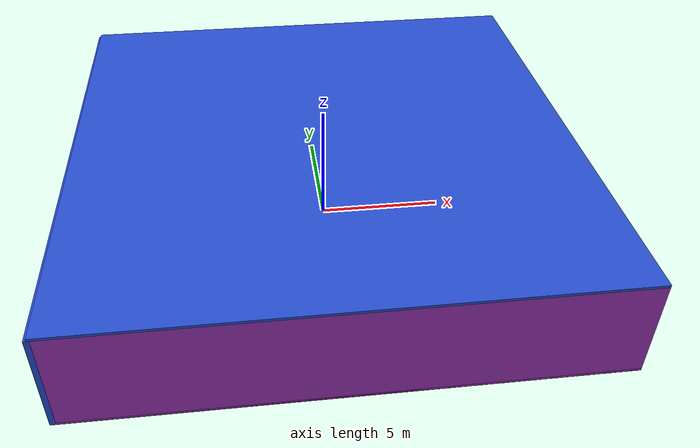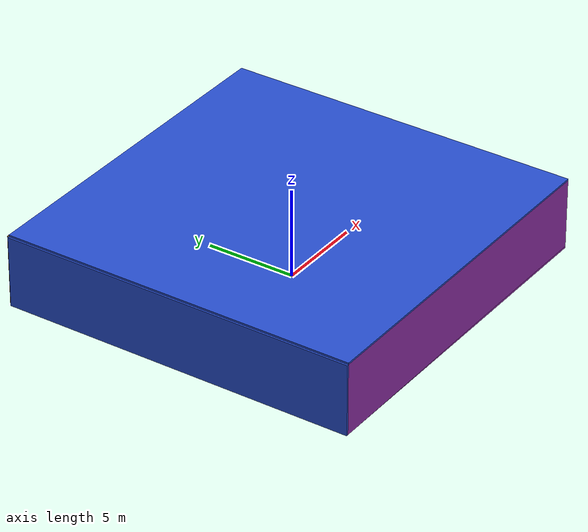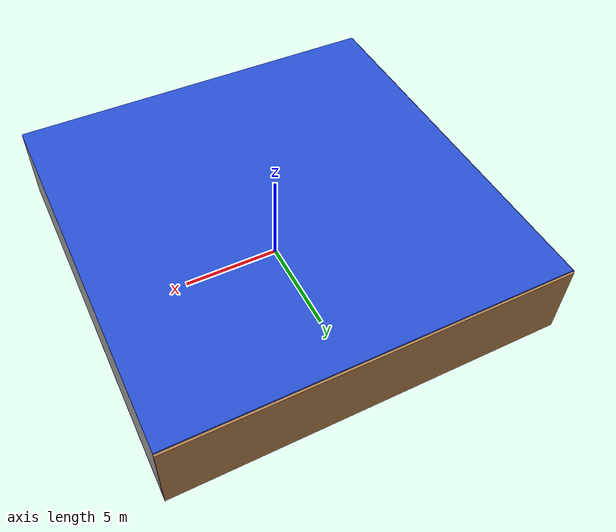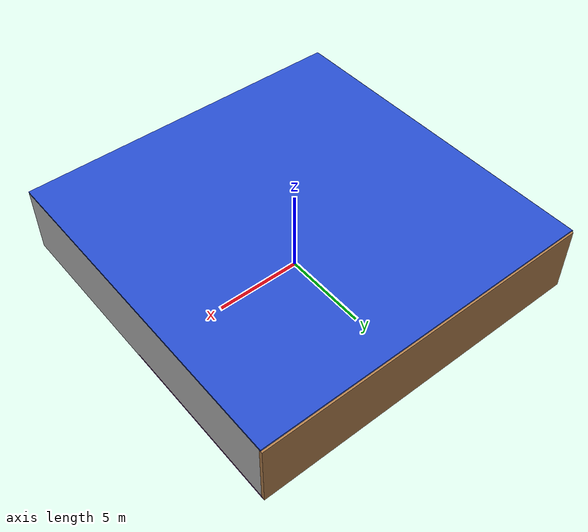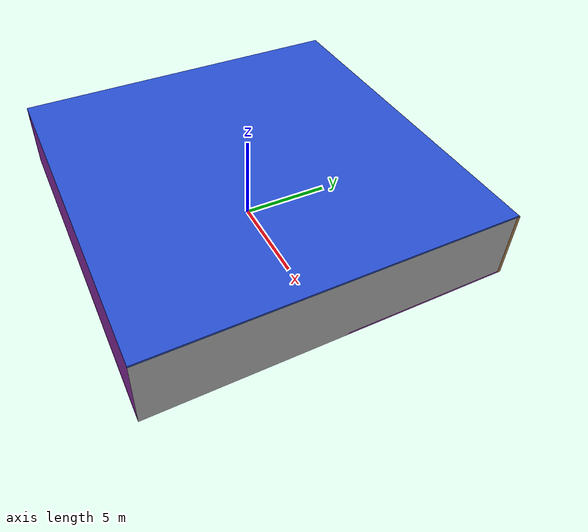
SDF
<sdf version="1.4">
 <world name="default">
  <physics type="ode">
   <max_step_size>0.001</max_step_size>
   <real_time_factor>1</real_time_factor>
   <real_time_update_rate>1000</real_time_update_rate>
   <gravity>0 0 -9.8</gravity>
  </physics>
  <scene><ambient>0.4 0.4 0.4 1</ambient><background>0.7 0.7 0.7 1</background><shadows>1</shadows></scene>
  <model name="Surrounding">
   <static>1</static>
   <link name="Ceiling">
    <collision name="Ceiling_Collision"><geometry><box><size>20 20 0.1</size></box></geometry></collision>
    <visual name="Ceiling_Visual">
     <geometry><box><size>20 20 0.1</size></box></geometry>
     <material>
      <script><uri>file://media/materials/scripts/gazebo.material</uri><name>Gazebo/BlueGlow</name></script>
     </material>
    </visual>
    <pose>0 0 4.05 0 0 0</pose>
   </link>
   <link name="Wall_South">
    <collision name="Wall_South_Collision">
     <geometry><box><size>20 0 4</size></box></geometry>
     <pose>0 0 2 0 -0 0</pose>
    </collision>
    <visual name="Wall_South_Visual">
     <pose>0 0 2 0 -0 0</pose>
     <geometry><box><size>20 0 4</size></box></geometry>
     <material>
      <script><uri>file://media/materials/scripts/gazebo.material</uri><name>Gazebo/Purple</name></script>
     </material>
    </visual>
    <velocity_decay><linear>0</linear><angular>0</angular></velocity_decay>
    <pose>0 -10 0 0 -0 0</pose>
   </link>
   <link name="Wall_East">
    <collision name="Wall_21_Collision">
     <geometry><box><size>20 0 4</size></box></geometry>
     <pose>0 0 2 0 -0 0</pose>
    </collision>
    <visual name="Wall_21_Visual">
     <pose>0 0 2 0 -0 0</pose>
     <geometry><box><size>20 0 4</size></box></geometry>
     <material>
      <script><uri>file://media/materials/scripts/gazebo.material</uri><name>Gazebo/LightOff</name></script>
     </material>
    </visual>
    <velocity_decay><linear>0</linear><angular>0</angular></velocity_decay>
    <pose>10 0 0 0 -0 1.5708</pose>
   </link>
   <link name="Wall_North">
    <collision name="Wall_22_Collision">
     <geometry><box><size>20 0.2 4</size></box></geometry>
     <pose>0 0 2 0 -0 0</pose>
    </collision>
    <visual name="Wall_22_Visual">
     <pose>0 0 2 0 -0 0</pose>
     <geometry><box><size>20 0.2 4</size></box></geometry>
     <material>
      <script><uri>file://media/materials/scripts/gazebo.material</uri><name>Gazebo/Wood</name></script>
     </material>
    </visual>
    <velocity_decay><linear>0</linear><angular>0</angular></velocity_decay>
    <pose>0 10 0 0 -0 0</pose>
   </link>
   <link name="Wall_West">
    <collision name="Wall_23_Collision">
     <geometry><box><size>20 0.2 4</size></box></geometry>
     <pose>0 0 2 0 -0 0</pose>
    </collision>
    <visual name="Wall_23_Visual">
     <pose>0 0 2 0 -0 0</pose>
     <geometry><box><size>20 0.2 4</size></box></geometry>
     <material>
      <script><uri>file://media/materials/scripts/gazebo.material</uri><name>Gazebo/BlueGlow</name></script>
     </material>
    </visual>
    <velocity_decay><linear>0</linear><angular>0</angular></velocity_decay>
    <pose>-10 0 0 0 0 -1.5708</pose>
   </link>
   <link name="Ground_link">
    <collision name="collision">
     <pose>0 0 .05 0 -0 0</pose>
     <geometry><box><size>20 20 0.1</size></box></geometry>
    </collision>
    <visual name="visual">
     <pose>0 0 .05 0 -0 0</pose>
     <geometry><box><size>20 20 0.1</size></box></geometry>
     <material>
      <script><uri>file://media/materials/scripts/gazebo.material</uri><name>Gazebo/PurpleGlow</name></script>
     </material>
    </visual>
   </link>
   <static>1</static>
  </model>
  <spherical_coordinates>
   <surface_model>EARTH_WGS84</surface_model>
   <latitude_deg>0</latitude_deg>
   <longitude_deg>0</longitude_deg>
   <elevation>0</elevation>
   <heading_deg>0</heading_deg>
  </spherical_coordinates>
  <light name="lightball_0" type="diffuse">
   <diffuse>0.8 0.8 0.8 1</diffuse>
   <specular>0.2 0.2 0.2 1</specular>
   <attenuation>
    <range>100</range>
    <constant>0.7</constant>
    <linear>0.01</linear>
    <quadratic>0.001</quadratic>
   </attenuation>
   <direction>-0.5 0.1 -0.9</direction>
   <pose>-5.74580009406 5.5226681416 3.58614984298 0 0 0</pose>
  </light>
  <light name="lightball_1" type="diffuse">
   <diffuse>0.8 0.8 0.8 1</diffuse>
   <specular>0.2 0.2 0.2 1</specular>
   <attenuation>
    <range>100</range>
    <constant>0.7</constant>
    <linear>0.01</linear>
    <quadratic>0.001</quadratic>
   </attenuation>
   <direction>-0.5 0.1 -0.9</direction>
   <pose>7.27207213929 -8.98234792241 1.24427876259 0 0 0</pose>
  </light>
  <light name="lightball_2" type="diffuse">
   <diffuse>0.8 0.8 0.8 1</diffuse>
   <specular>0.2 0.2 0.2 1</specular>
   <attenuation>
    <range>100</range>
    <constant>0.7</constant>
    <linear>0.01</linear>
    <quadratic>0.001</quadratic>
   </attenuation>
   <direction>-0.5 0.1 -0.9</direction>
   <pose>-5.72198255869 -6.20995773194 0.845088861998 0 0 0</pose>
  </light>
  <light name="lightball_3" type="diffuse">
   <diffuse>0.8 0.8 0.8 1</diffuse>
   <specular>0.2 0.2 0.2 1</specular>
   <attenuation>
    <range>100</range>
    <constant>0.7</constant>
    <linear>0.01</linear>
    <quadratic>0.001</quadratic>
   </attenuation>
   <direction>-0.5 0.1 -0.9</direction>
   <pose>-3.8023251074 -0.383950646439 3.49633107125 0 0 0</pose>
  </light>
  <light name="lightball_4" type="diffuse">
   <diffuse>0.8 0.8 0.8 1</diffuse>
   <specular>0.2 0.2 0.2 1</specular>
   <attenuation>
    <range>100</range>
    <constant>0.7</constant>
    <linear>0.01</linear>
    <quadratic>0.001</quadratic>
   </attenuation>
   <direction>-0.5 0.1 -0.9</direction>
   <pose>-8.322197859 -1.60967518882 3.69403737523 0 0 0</pose>
  </light>
  <include><uri>model://cabinet</uri><pose>-4.72985486001 -6.92564626688 0 0 0 1.23294050706</pose></include>
  <include><uri>model://cabinet</uri><pose>0.354745457475 -7.51683650625 0 0 0 2.15214841837</pose></include>
  <include>
   <uri>model://robocup_3Dsim_goal</uri>
   <pose>5.14045229756 -0.534572262742 0 0 0 1.85561305449</pose>
  </include>
  <include><uri>model://cabinet</uri><pose>5.58975228734 0.628197802081 0 0 0 2.85635723237</pose></include>
  <include>
   <uri>model://construction_cone</uri>
   <pose>4.54742380531 8.62140037139 0 0 0 1.52094396449</pose>
  </include>
  <include><uri>model://cabinet</uri><pose>6.66154077371 0.432726917751 0 0 0 0.631960105048</pose></include>
  <include><uri>model://cabinet</uri><pose>7.97862892806 8.41134995514 0 0 0 0.505120595495</pose></include>
 </world>
</sdf>

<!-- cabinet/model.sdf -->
<sdf version="1.5">
  <model name="cabinet">
    <static>true</static>
    <link name="cabinet_bottom_plate">
      <inertial>
        <pose>0 0 -1 0 0 0</pose>
        <inertia>
          <ixx>2.050000</ixx>
          <ixy>0</ixy>
          <ixz>0</ixz>
          <iyy>2.050000</iyy>
          <iyz>0</iyz>
          <izz>2.050000</izz>
        </inertia>
        <mass>25.000000</mass>
      </inertial>
      <collision name="cabinet_bottom_plate_geom">
        <pose>0 0 0.010000 0 0 0</pose>
        <geometry>
          <box>
            <size>0.450000 0.450000 0.020000</size>
          </box>
        </geometry>
      </collision>
      <visual name="cabinet_bottom_plate_geom_visual">
        <pose>0 0 0.010000 0 0 0</pose>
        <geometry>
          <box>
            <size>0.450000 0.450000 0.020000</size>
          </box>
        </geometry>
        <material>
          <script>
            <uri>model://media/materials/scripts/gazebo.material</uri>
            <name>Gazebo/Wood</name>
          </script>
        </material>
      </visual>
      <collision name="cabinet_bottom_plate_geom_cabinet_back_plate">
        <pose>0.235000 0 0.510000 0 0 0</pose>
        <geometry>
          <box>
            <size>0.020000 0.450000 1.020000</size>
          </box>
        </geometry>
      </collision>
      <visual name="cabinet_bottom_plate_geom_cabinet_back_plate_visual">
        <pose>0.235000 0 0.510000 0 0 0</pose>
        <geometry>
          <box>
            <size>0.020000 0.450000 1.020000</size>
          </box>
        </geometry>
        <material>
          <script>
            <uri>model://media/materials/scripts/gazebo.material</uri>
            <name>Gazebo/Wood</name>
          </script>
        </material>
      </visual>
      <collision name="cabinet_bottom_plate_geom_cabinet_left_plate">
        <pose>0 0.235000 0.510000 0 0 0</pose>
        <geometry>
          <box>
            <size>0.450000 0.020000 1.020000</size>
          </box>
        </geometry>
      </collision>
      <visual name="cabinet_bottom_plate_geom_cabinet_left_plate_visual">
        <pose>0 0.235000 0.510000 0 0 0</pose>
        <geometry>
          <box>
            <size>0.450000 0.020000 1.020000</size>
          </box>
        </geometry>
        <material>
          <script>
            <uri>model://media/materials/scripts/gazebo.material</uri>
            <name>Gazebo/Wood</name>
          </script>
        </material>
      </visual>
      <collision name="cabinet_bottom_plate_geom_cabinet_middle_plate">
        <pose>0 0 0.510000 0 0 0</pose>
        <geometry>
          <box>
            <size>0.450000 0.450000 0.020000</size>
          </box>
        </geometry>
      </collision>
      <visual name="cabinet_bottom_plate_geom_cabinet_middle_plate_visual">
        <pose>0 0 0.510000 0 0 0</pose>
        <geometry>
          <box>
            <size>0.450000 0.450000 0.020000</size>
          </box>
        </geometry>
        <material>
          <script>
            <uri>model://media/materials/scripts/gazebo.material</uri>
            <name>Gazebo/Wood</name>
          </script>
        </material>
      </visual>
      <collision name="cabinet_bottom_plate_geom_cabinet_right_plate">
        <pose>0 -0.235000 0.510000 0 0 0</pose>
        <geometry>
          <box>
            <size>0.450000 0.020000 1.020000</size>
          </box>
        </geometry>
      </collision>
      <visual name="cabinet_bottom_plate_geom_cabinet_right_plate_visual">
        <pose>0 -0.235000 0.510000 0 0 0</pose>
        <geometry>
          <box>
            <size>0.450000 0.020000 1.020000</size>
          </box>
        </geometry>
        <material>
          <script>
            <uri>model://media/materials/scripts/gazebo.material</uri>
            <name>Gazebo/Wood</name>
          </script>
        </material>
      </visual>
      <collision name="cabinet_bottom_plate_geom_cabinet_top_plate">
        <pose>0 0 1.010000 0 0 0</pose>
        <geometry>
          <box>
            <size>0.450000 0.450000 0.020000</size>
          </box>
        </geometry>
      </collision>
      <visual name="cabinet_bottom_plate_geom_cabinet_top_plate_visual">
        <pose>0 0 1.010000 0 0 0</pose>
        <geometry>
          <box>
            <size>0.450000 0.450000 0.020000</size>
          </box>
        </geometry>
        <material>
          <script>
            <uri>model://media/materials/scripts/gazebo.material</uri>
            <name>Gazebo/Wood</name>
          </script>
        </material>
      </visual>
    </link>
  </model>
</sdf>

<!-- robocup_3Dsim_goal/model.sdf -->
<sdf version="1.5">
  <model name="robocup_3d_goal">
    <static>true</static>
    <link name="left_post">
      <pose>0 1.05 0.45 0 0 0</pose>
      <collision name="collision">
        <geometry>
          <cylinder>
            <radius>0.05</radius>
            <length>0.9</length>
          </cylinder>
        </geometry>
      </collision>
      <visual name="visual">
        <geometry>
          <cylinder>
            <radius>0.05</radius>
            <length>0.9</length>
          </cylinder>
        </geometry>
        <material>
          <script>
            <uri>file://media/materials/scripts/gazebo.material</uri>
            <name>Gazebo/ZincYellow</name>
          </script>
        </material>
      </visual>
    </link>
    <link name="left_support_horiz_lower">
      <pose>0.30 1.05 0.01 0 0 0</pose>
      <collision name="collision">
        <geometry>
          <box>
            <size>0.50 0.02 0.02</size>
          </box>
        </geometry>
      </collision>
      <visual name="visual">
        <geometry>
          <box>
            <size>0.50 0.02 0.02</size>
          </box>
        </geometry>
        <material>
          <script>
            <uri>file://media/materials/scripts/gazebo.material</uri>
            <name>Gazebo/White</name>
          </script>
        </material>
      </visual>
    </link>
    <link name="left_support_horiz_upper">
      <pose>0.30 1.05 0.79 0 0 0</pose>
      <collision name="collision">
        <geometry>
          <box>
            <size>0.50 0.02 0.02</size>
          </box>
        </geometry>
      </collision>
      <visual name="visual">
        <geometry>
          <box>
            <size>0.50 0.02 0.02</size>
          </box>
        </geometry>
        <material>
          <script>
            <uri>file://media/materials/scripts/gazebo.material</uri>
            <name>Gazebo/White</name>
          </script>
        </material>
      </visual>
    </link>
    <link name="left_support_vertical">
      <pose>0.56 1.05 0.4 0 1.5708 0</pose>
      <collision name="collision">
        <geometry>
          <box>
            <size>0.80 0.02 0.02</size>
          </box>
        </geometry>
      </collision>
      <visual name="visual">
        <geometry>
          <box>
            <size>0.80 0.02 0.02</size>
          </box>
        </geometry>
        <material>
          <script>
            <uri>file://media/materials/scripts/gazebo.material</uri>
            <name>Gazebo/White</name>
          </script>
        </material>
      </visual>
    </link>
    <link name="right_support_horiz_lower">
      <pose>0.30 -1.05 0.01 0 0 0</pose>
      <collision name="collision">
        <geometry>
          <box>
            <size>0.50 0.02 0.02</size>
          </box>
        </geometry>
      </collision>
      <visual name="visual">
        <geometry>
          <box>
            <size>0.50 0.02 0.02</size>
          </box>
        </geometry>
        <material>
          <script>
            <uri>file://media/materials/scripts/gazebo.material</uri>
            <name>Gazebo/White</name>
          </script>
        </material>
      </visual>
    </link>
    <link name="right_support_horiz_upper">
      <pose>0.30 -1.05 0.79 0 0 0</pose>
      <collision name="collision">
        <geometry>
          <box>
            <size>0.50 0.02 0.02</size>
          </box>
        </geometry>
      </collision>
      <visual name="visual">
        <geometry>
          <box>
            <size>0.50 0.02 0.02</size>
          </box>
        </geometry>
        <material>
          <script>
            <uri>file://media/materials/scripts/gazebo.material</uri>
            <name>Gazebo/White</name>
          </script>
        </material>
      </visual>
    </link>
    <link name="right_support_vertical">
      <pose>0.56 -1.05 0.4 0 1.5708 0</pose>
      <collision name="collision">
        <geometry>
          <box>
            <size>0.80 0.02 0.02</size>
          </box>
        </geometry>
      </collision>
      <visual name="visual">
        <geometry>
          <box>
            <size>0.80 0.02 0.02</size>
          </box>
        </geometry>
        <material>
          <script>
            <uri>file://media/materials/scripts/gazebo.material</uri>
            <name>Gazebo/White</name>
          </script>
        </material>
      </visual>
    </link>
    <link name="center_support_horiz_lower">
      <pose>0.56 0 0.01 0 1.5708 0</pose>
      <collision name="collision">
        <geometry>
          <box>
            <size>0.02 2.08 0.02</size>
          </box>
        </geometry>
      </collision>
      <visual name="visual">
        <geometry>
          <box>
            <size>0.02 2.08 0.02</size>
          </box>
        </geometry>
        <material>
          <script>
            <uri>file://media/materials/scripts/gazebo.material</uri>
            <name>Gazebo/White</name>
          </script>
        </material>
      </visual>
    </link>
    <link name="center_support_horiz_upper">
      <pose>0.56 0 0.79 0 1.5708 0</pose>
      <collision name="collision">
        <geometry>
          <box>
            <size>0.02 2.08 0.02</size>
          </box>
        </geometry>
      </collision>
      <visual name="visual">
        <geometry>
          <box>
            <size>0.02 2.08 0.02</size>
          </box>
        </geometry>
        <material>
          <script>
            <uri>file://media/materials/scripts/gazebo.material</uri>
            <name>Gazebo/White</name>
          </script>
        </material>
      </visual>
    </link>
    <link name="right_post">
      <pose>0 -1.05 0.45 0 0 0</pose>
      <collision name="collision">
        <geometry>
          <cylinder>
            <radius>0.05</radius>
            <length>0.9</length>
          </cylinder>
        </geometry>
      </collision>
      <visual name="visual">
        <geometry>
          <cylinder>
            <radius>0.05</radius>
            <length>0.9</length>
          </cylinder>
        </geometry>
        <material>
          <script>
            <uri>file://media/materials/scripts/gazebo.material</uri>
            <name>Gazebo/ZincYellow</name>
          </script>
        </material>
      </visual>
    </link>
    <link name="crossbar">
      <pose>0 0 0.85 1.57 1.57 0</pose>
      <collision name="collision">
        <geometry>
          <cylinder>
            <radius>0.05</radius>
            <length>2.0</length>
          </cylinder>
        </geometry>
      </collision>
      <visual name="visual">
        <geometry>
          <cylinder>
            <radius>0.05</radius>
            <length>2.0</length>
          </cylinder>
        </geometry>
        <material>
          <script>
            <uri>file://media/materials/scripts/gazebo.material</uri>
            <name>Gazebo/ZincYellow</name>
          </script>
        </material>
      </visual>
    </link>
    <link name="center_net">
      <pose>0.56 0 0.40 0 0 0</pose>
      <collision name="collision">
        <geometry>
          <box>
            <size>0.01 2.1 0.80</size>
          </box>
        </geometry>
      </collision>
      <visual name="visual">
        <geometry>
          <box>
            <size>0.01 2.1 0.80</size>
          </box>
        </geometry>
        <material>
          <script>
            <uri>model://../model_source/models/robocup09_spl_field/materials/scripts/</uri>
            <uri>model://../model_source/models/robocup09_spl_field/materials/textures/</uri>
            <name>RoboCup/Net</name>
          </script>
        </material>
      </visual>
    </link>
    <link name="left_net">
      <pose>0.30 1.05 0.40 0 0 0</pose>
      <collision name="collision">
        <geometry>
          <box>
            <size>0.50 0.01 0.76</size>
          </box>
        </geometry>
      </collision>
      <visual name="visual">
        <geometry>
          <box>
            <size>0.50 0.01 0.76</size>
          </box>
        </geometry>
        <material>
          <script>
            <uri>model://../model_source/models/robocup09_spl_field/materials/scripts/</uri>
            <uri>model://../model_source/models/robocup09_spl_field/materials/textures/</uri>
            <name>RoboCup/Net</name>
          </script>
        </material>
      </visual>
    </link>
    <link name="right_net">
      <pose>0.30 -1.05 0.40 0 0 0</pose>
      <collision name="collision">
        <geometry>
          <box>
            <size>0.50 0.01 0.76</size>
          </box>
        </geometry>
      </collision>
      <visual name="visual">
        <geometry>
          <box>
            <size>0.50 0.01 0.76</size>
          </box>
        </geometry>
        <material>
          <script>
            <uri>model://../model_source/models/robocup09_spl_field/materials/scripts/</uri>
            <uri>model://../model_source/models/robocup09_spl_field/materials/textures/</uri>
            <name>RoboCup/Net</name>
          </script>
        </material>
      </visual>
    </link>
  </model>
</sdf>

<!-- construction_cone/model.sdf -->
<sdf version="1.5">
  <model name="Construction Cone">
    <link name="link">
      <collision name="collision">
        <geometry>
          <mesh>
            <scale>10 10 10</scale>
            <uri>file://isr-testbed/construction_cone/meshes/construction_cone.dae</uri>
          </mesh>
        </geometry>
      </collision>
      <visual name="visual">
        <geometry>
          <mesh>
            <scale>10 10 10</scale>
            <uri>file://isr-testbed/construction_cone/meshes/construction_cone.dae</uri>
          </mesh>
        </geometry>
      </visual>
    </link>
  </model>
</sdf>
